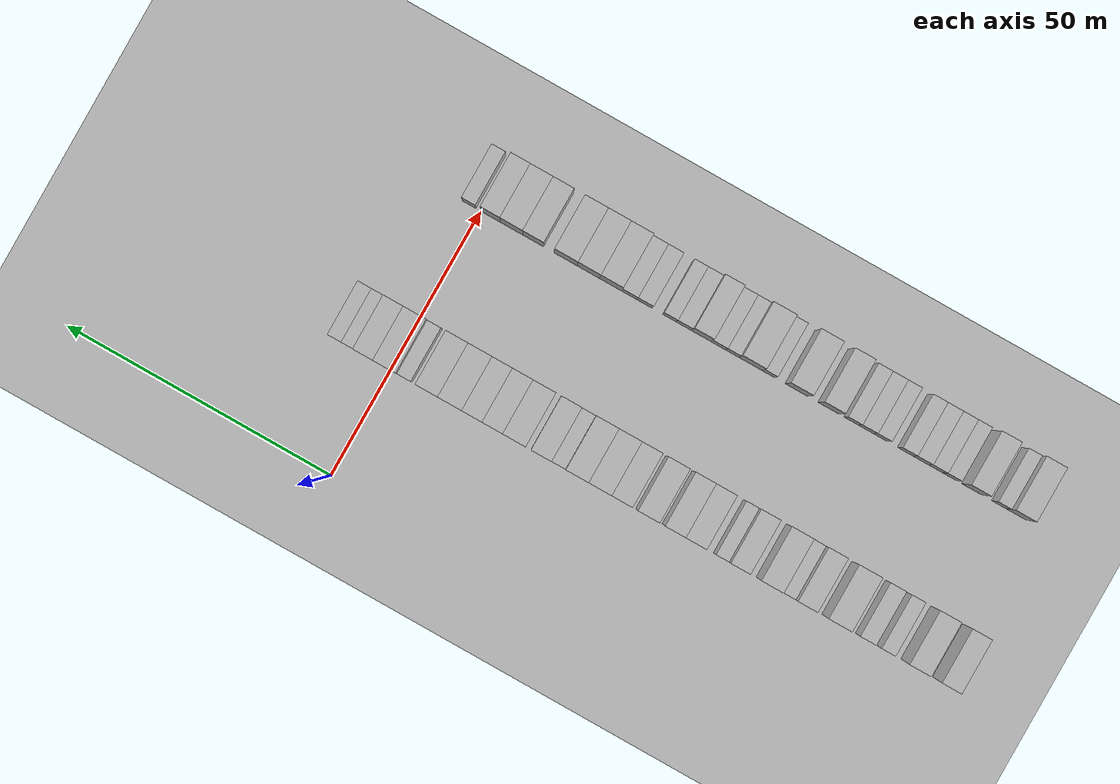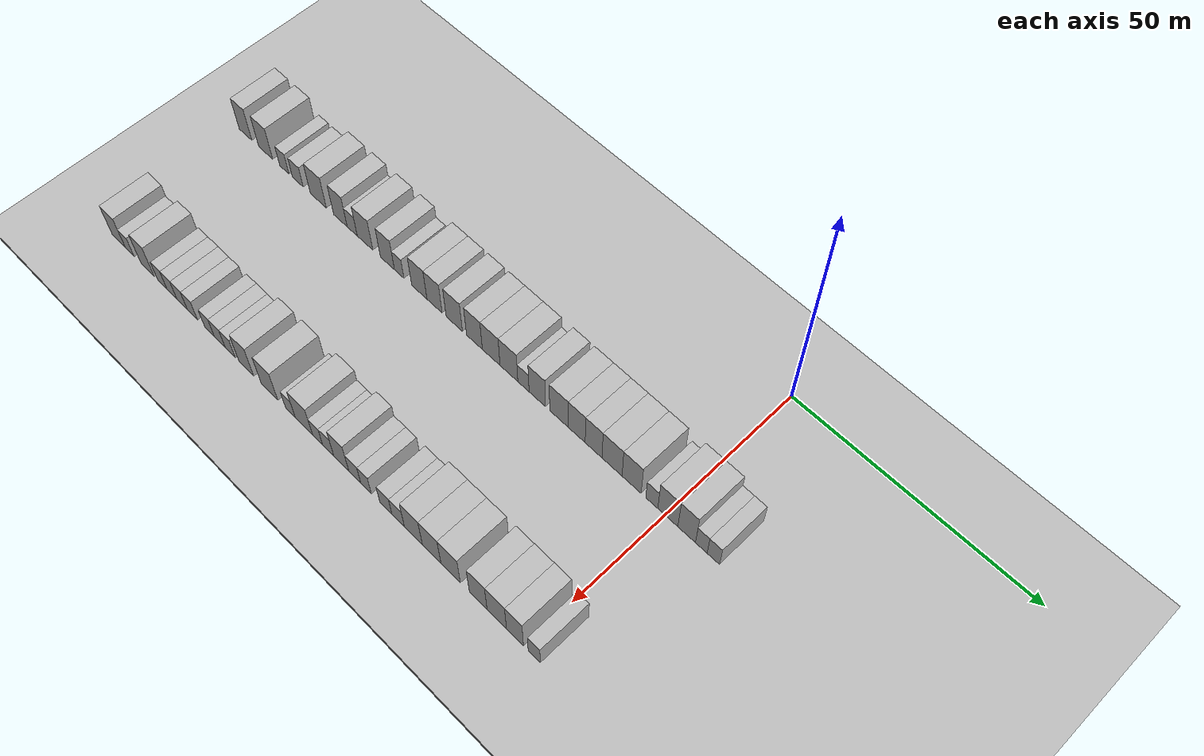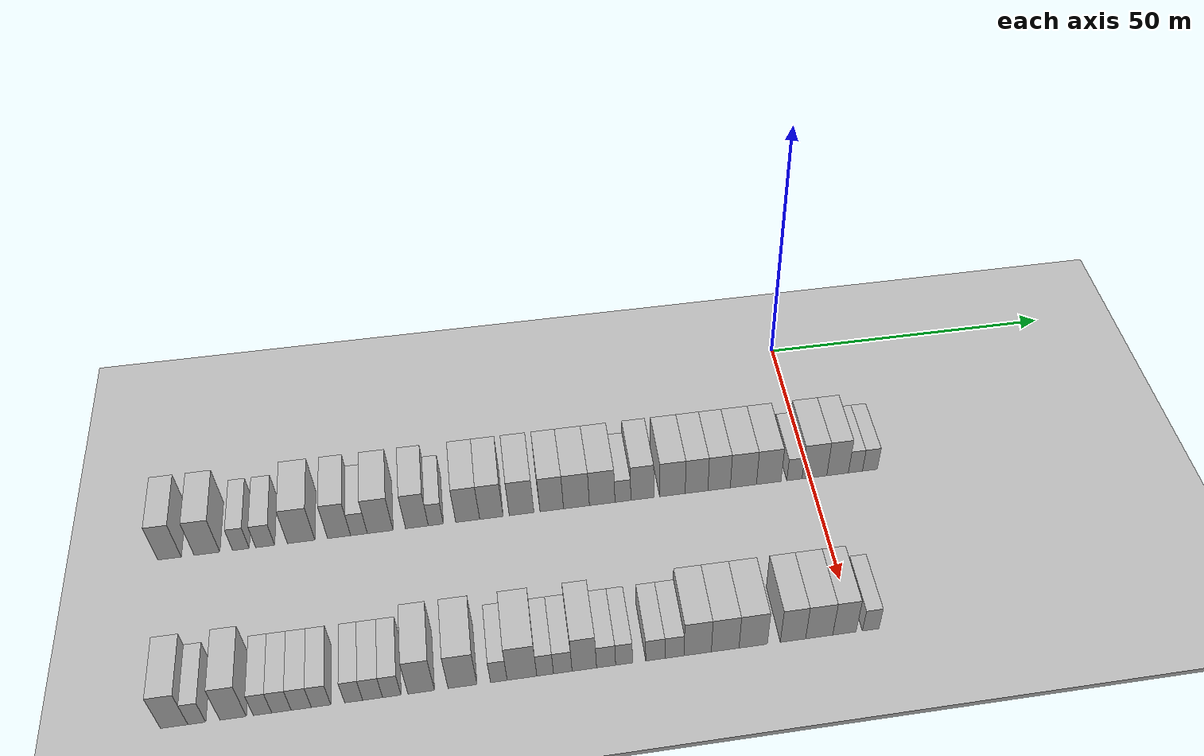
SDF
<sdf version="1.6">
 <world name="default">
  <include><name>ground_plane_1</name><uri>model://HANNAS_ground_plane</uri></include>
  <include>
   <name>ground_plane_2</name>
   <uri>model://HANNAS_ground_plane</uri>
   <pose>100 0 0  0 0 0</pose>
  </include>
  <model name="building_29">
   <static>1</static>
   <pose>25.0000 -104.2438 0 0.000000 0.000000 0.000000</pose>
   <link name="link">
    <pose>0 0 4.50 0 0 0</pose>
    <collision name="collision"><geometry><box><size>10.0000 3.6421 9.0000</size></box></geometry></collision>
    <visual name="visual">
     <cast_shadows>0</cast_shadows>
     <geometry><box><size>10.0000 3.6421 9.0000</size></box></geometry>
     <material>
      <script>
       <uri>model://HANNAS_wall/materials/scripts</uri>
       <uri>model://HANNAS_wall/materials/textures</uri>
       <name>vrc/HANNAS_wall</name>
      </script>
     </material>
    </visual>
   </link>
  </model>
  <model name="building_30">
   <static>1</static>
   <pose>25.0000 -98.4290 0 0.000000 0.000000 0.000000</pose>
   <link name="link">
    <pose>0 0 4.50 0 0 0</pose>
    <collision name="collision"><geometry><box><size>10.0000 3.9873 9.0000</size></box></geometry></collision>
    <visual name="visual">
     <cast_shadows>0</cast_shadows>
     <geometry><box><size>10.0000 3.9873 9.0000</size></box></geometry>
     <material>
      <script>
       <uri>model://HANNAS_wall/materials/scripts</uri>
       <uri>model://HANNAS_wall/materials/textures</uri>
       <name>vrc/HANNAS_wall</name>
      </script>
     </material>
    </visual>
   </link>
  </model>
  <model name="building_31">
   <static>1</static>
   <pose>25.0000 -93.1362 0 0.000000 0.000000 0.000000</pose>
   <link name="link">
    <pose>0 0 3.00 0 0 0</pose>
    <collision name="collision"><geometry><box><size>10.0000 2.5985 6.0000</size></box></geometry></collision>
    <visual name="visual">
     <cast_shadows>0</cast_shadows>
     <geometry><box><size>10.0000 2.5985 6.0000</size></box></geometry>
     <material>
      <script>
       <uri>model://HANNAS_wall/materials/scripts</uri>
       <uri>model://HANNAS_wall/materials/textures</uri>
       <name>vrc/HANNAS_wall</name>
      </script>
     </material>
    </visual>
   </link>
  </model>
  <model name="building_32">
   <static>1</static>
   <pose>25.0000 -89.3451 0 0.000000 0.000000 0.000000</pose>
   <link name="link">
    <pose>0 0 3.00 0 0 0</pose>
    <collision name="collision"><geometry><box><size>10.0000 2.9836 6.0000</size></box></geometry></collision>
    <visual name="visual">
     <cast_shadows>0</cast_shadows>
     <geometry><box><size>10.0000 2.9836 6.0000</size></box></geometry>
     <material>
      <script>
       <uri>model://HANNAS_wall/materials/scripts</uri>
       <uri>model://HANNAS_wall/materials/textures</uri>
       <name>vrc/HANNAS_wall</name>
      </script>
     </material>
    </visual>
   </link>
  </model>
  <model name="building_33">
   <static>1</static>
   <pose>25.0000 -83.6775 0 0.000000 0.000000 0.000000</pose>
   <link name="link">
    <pose>0 0 4.50 0 0 0</pose>
    <collision name="collision"><geometry><box><size>10.0000 4.3515 9.0000</size></box></geometry></collision>
    <visual name="visual">
     <cast_shadows>0</cast_shadows>
     <geometry><box><size>10.0000 4.3515 9.0000</size></box></geometry>
     <material>
      <script>
       <uri>model://HANNAS_wall/materials/scripts</uri>
       <uri>model://HANNAS_wall/materials/textures</uri>
       <name>vrc/HANNAS_wall</name>
      </script>
     </material>
    </visual>
   </link>
  </model>
  <model name="building_34">
   <static>1</static>
   <pose>25.0000 -77.6748 0 0.000000 0.000000 0.000000</pose>
   <link name="link">
    <pose>0 0 4.50 0 0 0</pose>
    <collision name="collision"><geometry><box><size>10.0000 3.6540 9.0000</size></box></geometry></collision>
    <visual name="visual">
     <cast_shadows>0</cast_shadows>
     <geometry><box><size>10.0000 3.6540 9.0000</size></box></geometry>
     <material>
      <script>
       <uri>model://HANNAS_wall/materials/scripts</uri>
       <uri>model://HANNAS_wall/materials/textures</uri>
       <name>vrc/HANNAS_wall</name>
      </script>
     </material>
    </visual>
   </link>
  </model>
  <model name="building_35">
   <static>1</static>
   <pose>25.0000 -74.5172 0 0.000000 0.000000 0.000000</pose>
   <link name="link">
    <pose>0 0 3.00 0 0 0</pose>
    <collision name="collision"><geometry><box><size>10.0000 2.6610 6.0000</size></box></geometry></collision>
    <visual name="visual">
     <cast_shadows>0</cast_shadows>
     <geometry><box><size>10.0000 2.6610 6.0000</size></box></geometry>
     <material>
      <script>
       <uri>model://HANNAS_wall/materials/scripts</uri>
       <uri>model://HANNAS_wall/materials/textures</uri>
       <name>vrc/HANNAS_wall</name>
      </script>
     </material>
    </visual>
   </link>
  </model>
  <model name="building_36">
   <static>1</static>
   <pose>25.0000 -71.1314 0 0.000000 0.000000 0.000000</pose>
   <link name="link">
    <pose>0 0 4.50 0 0 0</pose>
    <collision name="collision"><geometry><box><size>10.0000 4.1106 9.0000</size></box></geometry></collision>
    <visual name="visual">
     <cast_shadows>0</cast_shadows>
     <geometry><box><size>10.0000 4.1106 9.0000</size></box></geometry>
     <material>
      <script>
       <uri>model://HANNAS_wall/materials/scripts</uri>
       <uri>model://HANNAS_wall/materials/textures</uri>
       <name>vrc/HANNAS_wall</name>
      </script>
     </material>
    </visual>
   </link>
  </model>
  <model name="building_37">
   <static>1</static>
   <pose>25.0000 -65.2476 0 0.000000 0.000000 0.000000</pose>
   <link name="link">
    <pose>0 0 4.50 0 0 0</pose>
    <collision name="collision"><geometry><box><size>10.0000 3.6570 9.0000</size></box></geometry></collision>
    <visual name="visual">
     <cast_shadows>0</cast_shadows>
     <geometry><box><size>10.0000 3.6570 9.0000</size></box></geometry>
     <material>
      <script>
       <uri>model://HANNAS_wall/materials/scripts</uri>
       <uri>model://HANNAS_wall/materials/textures</uri>
       <name>vrc/HANNAS_wall</name>
      </script>
     </material>
    </visual>
   </link>
  </model>
  <model name="building_38">
   <static>1</static>
   <pose>25.0000 -62.2054 0 0.000000 0.000000 0.000000</pose>
   <link name="link">
    <pose>0 0 3.00 0 0 0</pose>
    <collision name="collision"><geometry><box><size>10.0000 2.4275 6.0000</size></box></geometry></collision>
    <visual name="visual">
     <cast_shadows>0</cast_shadows>
     <geometry><box><size>10.0000 2.4275 6.0000</size></box></geometry>
     <material>
      <script>
       <uri>model://HANNAS_wall/materials/scripts</uri>
       <uri>model://HANNAS_wall/materials/textures</uri>
       <name>vrc/HANNAS_wall</name>
      </script>
     </material>
    </visual>
   </link>
  </model>
  <model name="building_39">
   <static>1</static>
   <pose>25.0000 -57.0546 0 0.000000 0.000000 0.000000</pose>
   <link name="link">
    <pose>0 0 4.50 0 0 0</pose>
    <collision name="collision"><geometry><box><size>10.0000 3.8741 9.0000</size></box></geometry></collision>
    <visual name="visual">
     <cast_shadows>0</cast_shadows>
     <geometry><box><size>10.0000 3.8741 9.0000</size></box></geometry>
     <material>
      <script>
       <uri>model://HANNAS_wall/materials/scripts</uri>
       <uri>model://HANNAS_wall/materials/textures</uri>
       <name>vrc/HANNAS_wall</name>
      </script>
     </material>
    </visual>
   </link>
  </model>
  <model name="building_40">
   <static>1</static>
   <pose>25.0000 -53.2112 0 0.000000 0.000000 0.000000</pose>
   <link name="link">
    <pose>0 0 4.50 0 0 0</pose>
    <collision name="collision"><geometry><box><size>10.0000 3.8126 9.0000</size></box></geometry></collision>
    <visual name="visual">
     <cast_shadows>0</cast_shadows>
     <geometry><box><size>10.0000 3.8126 9.0000</size></box></geometry>
     <material>
      <script>
       <uri>model://HANNAS_wall/materials/scripts</uri>
       <uri>model://HANNAS_wall/materials/textures</uri>
       <name>vrc/HANNAS_wall</name>
      </script>
     </material>
    </visual>
   </link>
  </model>
  <model name="building_41">
   <static>1</static>
   <pose>25.0000 -48.2939 0 0.000000 0.000000 0.000000</pose>
   <link name="link">
    <pose>0 0 4.50 0 0 0</pose>
    <collision name="collision"><geometry><box><size>10.0000 4.0220 9.0000</size></box></geometry></collision>
    <visual name="visual">
     <cast_shadows>0</cast_shadows>
     <geometry><box><size>10.0000 4.0220 9.0000</size></box></geometry>
     <material>
      <script>
       <uri>model://HANNAS_wall/materials/scripts</uri>
       <uri>model://HANNAS_wall/materials/textures</uri>
       <name>vrc/HANNAS_wall</name>
      </script>
     </material>
    </visual>
   </link>
  </model>
  <model name="building_42">
   <static>1</static>
   <pose>25.0000 -43.3545 0 0.000000 0.000000 0.000000</pose>
   <link name="link">
    <pose>0 0 4.50 0 0 0</pose>
    <collision name="collision"><geometry><box><size>10.0000 3.8568 9.0000</size></box></geometry></collision>
    <visual name="visual">
     <cast_shadows>0</cast_shadows>
     <geometry><box><size>10.0000 3.8568 9.0000</size></box></geometry>
     <material>
      <script>
       <uri>model://HANNAS_wall/materials/scripts</uri>
       <uri>model://HANNAS_wall/materials/textures</uri>
       <name>vrc/HANNAS_wall</name>
      </script>
     </material>
    </visual>
   </link>
  </model>
  <model name="building_43">
   <static>1</static>
   <pose>25.0000 -39.2970 0 0.000000 0.000000 0.000000</pose>
   <link name="link">
    <pose>0 0 4.50 0 0 0</pose>
    <collision name="collision"><geometry><box><size>10.0000 4.2583 9.0000</size></box></geometry></collision>
    <visual name="visual">
     <cast_shadows>0</cast_shadows>
     <geometry><box><size>10.0000 4.2583 9.0000</size></box></geometry>
     <material>
      <script>
       <uri>model://HANNAS_wall/materials/scripts</uri>
       <uri>model://HANNAS_wall/materials/textures</uri>
       <name>vrc/HANNAS_wall</name>
      </script>
     </material>
    </visual>
   </link>
  </model>
  <model name="building_44">
   <static>1</static>
   <pose>25.0000 -35.0530 0 0.000000 0.000000 0.000000</pose>
   <link name="link">
    <pose>0 0 4.50 0 0 0</pose>
    <collision name="collision"><geometry><box><size>10.0000 4.2295 9.0000</size></box></geometry></collision>
    <visual name="visual">
     <cast_shadows>0</cast_shadows>
     <geometry><box><size>10.0000 4.2295 9.0000</size></box></geometry>
     <material>
      <script>
       <uri>model://HANNAS_wall/materials/scripts</uri>
       <uri>model://HANNAS_wall/materials/textures</uri>
       <name>vrc/HANNAS_wall</name>
      </script>
     </material>
    </visual>
   </link>
  </model>
  <model name="building_45">
   <static>1</static>
   <pose>25.0000 -31.6204 0 0.000000 0.000000 0.000000</pose>
   <link name="link">
    <pose>0 0 3.00 0 0 0</pose>
    <collision name="collision"><geometry><box><size>10.0000 2.6357 6.0000</size></box></geometry></collision>
    <visual name="visual">
     <cast_shadows>0</cast_shadows>
     <geometry><box><size>10.0000 2.6357 6.0000</size></box></geometry>
     <material>
      <script>
       <uri>model://HANNAS_wall/materials/scripts</uri>
       <uri>model://HANNAS_wall/materials/textures</uri>
       <name>vrc/HANNAS_wall</name>
      </script>
     </material>
    </visual>
   </link>
  </model>
  <model name="building_46">
   <static>1</static>
   <pose>25.0000 -28.4024 0 0.000000 0.000000 0.000000</pose>
   <link name="link">
    <pose>0 0 4.50 0 0 0</pose>
    <collision name="collision"><geometry><box><size>10.0000 3.8005 9.0000</size></box></geometry></collision>
    <visual name="visual">
     <cast_shadows>0</cast_shadows>
     <geometry><box><size>10.0000 3.8005 9.0000</size></box></geometry>
     <material>
      <script>
       <uri>model://HANNAS_wall/materials/scripts</uri>
       <uri>model://HANNAS_wall/materials/textures</uri>
       <name>vrc/HANNAS_wall</name>
      </script>
     </material>
    </visual>
   </link>
  </model>
  <model name="building_47">
   <static>1</static>
   <pose>25.0000 -23.3721 0 0.000000 0.000000 0.000000</pose>
   <link name="link">
    <pose>0 0 4.50 0 0 0</pose>
    <collision name="collision"><geometry><box><size>10.0000 4.2600 9.0000</size></box></geometry></collision>
    <visual name="visual">
     <cast_shadows>0</cast_shadows>
     <geometry><box><size>10.0000 4.2600 9.0000</size></box></geometry>
     <material>
      <script>
       <uri>model://HANNAS_wall/materials/scripts</uri>
       <uri>model://HANNAS_wall/materials/textures</uri>
       <name>vrc/HANNAS_wall</name>
      </script>
     </material>
    </visual>
   </link>
  </model>
  <model name="building_48">
   <static>1</static>
   <pose>25.0000 -19.3374 0 0.000000 0.000000 0.000000</pose>
   <link name="link">
    <pose>0 0 4.50 0 0 0</pose>
    <collision name="collision"><geometry><box><size>10.0000 3.8095 9.0000</size></box></geometry></collision>
    <visual name="visual">
     <cast_shadows>0</cast_shadows>
     <geometry><box><size>10.0000 3.8095 9.0000</size></box></geometry>
     <material>
      <script>
       <uri>model://HANNAS_wall/materials/scripts</uri>
       <uri>model://HANNAS_wall/materials/textures</uri>
       <name>vrc/HANNAS_wall</name>
      </script>
     </material>
    </visual>
   </link>
  </model>
  <model name="building_49">
   <static>1</static>
   <pose>25.0000 -15.5448 0 0.000000 0.000000 0.000000</pose>
   <link name="link">
    <pose>0 0 4.50 0 0 0</pose>
    <collision name="collision"><geometry><box><size>10.0000 3.7757 9.0000</size></box></geometry></collision>
    <visual name="visual">
     <cast_shadows>0</cast_shadows>
     <geometry><box><size>10.0000 3.7757 9.0000</size></box></geometry>
     <material>
      <script>
       <uri>model://HANNAS_wall/materials/scripts</uri>
       <uri>model://HANNAS_wall/materials/textures</uri>
       <name>vrc/HANNAS_wall</name>
      </script>
     </material>
    </visual>
   </link>
  </model>
  <model name="building_50">
   <static>1</static>
   <pose>25.0000 -11.4437 0 0.000000 0.000000 0.000000</pose>
   <link name="link">
    <pose>0 0 4.50 0 0 0</pose>
    <collision name="collision"><geometry><box><size>10.0000 4.4266 9.0000</size></box></geometry></collision>
    <visual name="visual">
     <cast_shadows>0</cast_shadows>
     <geometry><box><size>10.0000 4.4266 9.0000</size></box></geometry>
     <material>
      <script>
       <uri>model://HANNAS_wall/materials/scripts</uri>
       <uri>model://HANNAS_wall/materials/textures</uri>
       <name>vrc/HANNAS_wall</name>
      </script>
     </material>
    </visual>
   </link>
  </model>
  <model name="building_51">
   <static>1</static>
   <pose>25.0000 -7.1522 0 0.000000 0.000000 0.000000</pose>
   <link name="link">
    <pose>0 0 4.50 0 0 0</pose>
    <collision name="collision"><geometry><box><size>10.0000 4.1563 9.0000</size></box></geometry></collision>
    <visual name="visual">
     <cast_shadows>0</cast_shadows>
     <geometry><box><size>10.0000 4.1563 9.0000</size></box></geometry>
     <material>
      <script>
       <uri>model://HANNAS_wall/materials/scripts</uri>
       <uri>model://HANNAS_wall/materials/textures</uri>
       <name>vrc/HANNAS_wall</name>
      </script>
     </material>
    </visual>
   </link>
  </model>
  <model name="building_52">
   <static>1</static>
   <pose>25.0000 -2.7826 0 0.000000 0.000000 0.000000</pose>
   <link name="link">
    <pose>0 0 3.00 0 0 0</pose>
    <collision name="collision"><geometry><box><size>10.0000 2.5829 6.0000</size></box></geometry></collision>
    <visual name="visual">
     <cast_shadows>0</cast_shadows>
     <geometry><box><size>10.0000 2.5829 6.0000</size></box></geometry>
     <material>
      <script>
       <uri>model://HANNAS_wall/materials/scripts</uri>
       <uri>model://HANNAS_wall/materials/textures</uri>
       <name>vrc/HANNAS_wall</name>
      </script>
     </material>
    </visual>
   </link>
  </model>
  <model name="building_53">
   <static>1</static>
   <pose>25.0000 0.6351 0 0.000000 0.000000 0.000000</pose>
   <link name="link">
    <pose>0 0 4.50 0 0 0</pose>
    <collision name="collision"><geometry><box><size>10.0000 4.2525 9.0000</size></box></geometry></collision>
    <visual name="visual">
     <cast_shadows>0</cast_shadows>
     <geometry><box><size>10.0000 4.2525 9.0000</size></box></geometry>
     <material>
      <script>
       <uri>model://HANNAS_wall/materials/scripts</uri>
       <uri>model://HANNAS_wall/materials/textures</uri>
       <name>vrc/HANNAS_wall</name>
      </script>
     </material>
    </visual>
   </link>
  </model>
  <model name="building_54">
   <static>1</static>
   <pose>25.0000 4.6112 0 0.000000 0.000000 0.000000</pose>
   <link name="link">
    <pose>0 0 4.50 0 0 0</pose>
    <collision name="collision"><geometry><box><size>10.0000 3.6997 9.0000</size></box></geometry></collision>
    <visual name="visual">
     <cast_shadows>0</cast_shadows>
     <geometry><box><size>10.0000 3.6997 9.0000</size></box></geometry>
     <material>
      <script>
       <uri>model://HANNAS_wall/materials/scripts</uri>
       <uri>model://HANNAS_wall/materials/textures</uri>
       <name>vrc/HANNAS_wall</name>
      </script>
     </material>
    </visual>
   </link>
  </model>
  <model name="building_55">
   <static>1</static>
   <pose>25.0000 7.6699 0 0.000000 0.000000 0.000000</pose>
   <link name="link">
    <pose>0 0 3.00 0 0 0</pose>
    <collision name="collision"><geometry><box><size>10.0000 2.4176 6.0000</size></box></geometry></collision>
    <visual name="visual">
     <cast_shadows>0</cast_shadows>
     <geometry><box><size>10.0000 2.4176 6.0000</size></box></geometry>
     <material>
      <script>
       <uri>model://HANNAS_wall/materials/scripts</uri>
       <uri>model://HANNAS_wall/materials/textures</uri>
       <name>vrc/HANNAS_wall</name>
      </script>
     </material>
    </visual>
   </link>
  </model>
  <model name="building_56">
   <static>1</static>
   <pose>25.0000 10.1637 0 0.000000 0.000000 0.000000</pose>
   <link name="link">
    <pose>0 0 3.00 0 0 0</pose>
    <collision name="collision"><geometry><box><size>10.0000 2.5700 6.0000</size></box></geometry></collision>
    <visual name="visual">
     <cast_shadows>0</cast_shadows>
     <geometry><box><size>10.0000 2.5700 6.0000</size></box></geometry>
     <material>
      <script>
       <uri>model://HANNAS_wall/materials/scripts</uri>
       <uri>model://HANNAS_wall/materials/textures</uri>
       <name>vrc/HANNAS_wall</name>
      </script>
     </material>
    </visual>
   </link>
  </model>
  <model name="building_141">
   <static>1</static>
   <pose>55.0000 -101.0415 0 0.000000 0.000000 0.000000</pose>
   <link name="link">
    <pose>0 0 4.50 0 0 0</pose>
    <collision name="collision"><geometry><box><size>10.0000 3.8505 9.0000</size></box></geometry></collision>
    <visual name="visual">
     <cast_shadows>0</cast_shadows>
     <geometry><box><size>10.0000 3.8505 9.0000</size></box></geometry>
     <material>
      <script>
       <uri>model://HANNAS_wall/materials/scripts</uri>
       <uri>model://HANNAS_wall/materials/textures</uri>
       <name>vrc/HANNAS_wall</name>
      </script>
     </material>
    </visual>
   </link>
  </model>
  <model name="building_142">
   <static>1</static>
   <pose>55.0000 -97.8619 0 0.000000 0.000000 0.000000</pose>
   <link name="link">
    <pose>0 0 3.00 0 0 0</pose>
    <collision name="collision"><geometry><box><size>10.0000 2.5088 6.0000</size></box></geometry></collision>
    <visual name="visual">
     <cast_shadows>0</cast_shadows>
     <geometry><box><size>10.0000 2.5088 6.0000</size></box></geometry>
     <material>
      <script>
       <uri>model://HANNAS_wall/materials/scripts</uri>
       <uri>model://HANNAS_wall/materials/textures</uri>
       <name>vrc/HANNAS_wall</name>
      </script>
     </material>
    </visual>
   </link>
  </model>
  <model name="building_143">
   <static>1</static>
   <pose>55.0000 -92.7364 0 0.000000 0.000000 0.000000</pose>
   <link name="link">
    <pose>0 0 4.50 0 0 0</pose>
    <collision name="collision"><geometry><box><size>10.0000 3.7421 9.0000</size></box></geometry></collision>
    <visual name="visual">
     <cast_shadows>0</cast_shadows>
     <geometry><box><size>10.0000 3.7421 9.0000</size></box></geometry>
     <material>
      <script>
       <uri>model://HANNAS_wall/materials/scripts</uri>
       <uri>model://HANNAS_wall/materials/textures</uri>
       <name>vrc/HANNAS_wall</name>
      </script>
     </material>
    </visual>
   </link>
  </model>
  <model name="building_144">
   <static>1</static>
   <pose>55.0000 -88.5552 0 0.000000 0.000000 0.000000</pose>
   <link name="link">
    <pose>0 0 3.00 0 0 0</pose>
    <collision name="collision"><geometry><box><size>10.0000 2.6205 6.0000</size></box></geometry></collision>
    <visual name="visual">
     <cast_shadows>0</cast_shadows>
     <geometry><box><size>10.0000 2.6205 6.0000</size></box></geometry>
     <material>
      <script>
       <uri>model://HANNAS_wall/materials/scripts</uri>
       <uri>model://HANNAS_wall/materials/textures</uri>
       <name>vrc/HANNAS_wall</name>
      </script>
     </material>
    </visual>
   </link>
  </model>
  <model name="building_145">
   <static>1</static>
   <pose>55.0000 -85.8587 0 0.000000 0.000000 0.000000</pose>
   <link name="link">
    <pose>0 0 3.00 0 0 0</pose>
    <collision name="collision"><geometry><box><size>10.0000 2.7725 6.0000</size></box></geometry></collision>
    <visual name="visual">
     <cast_shadows>0</cast_shadows>
     <geometry><box><size>10.0000 2.7725 6.0000</size></box></geometry>
     <material>
      <script>
       <uri>model://HANNAS_wall/materials/scripts</uri>
       <uri>model://HANNAS_wall/materials/textures</uri>
       <name>vrc/HANNAS_wall</name>
      </script>
     </material>
    </visual>
   </link>
  </model>
  <model name="building_146">
   <static>1</static>
   <pose>55.0000 -83.0288 0 0.000000 0.000000 0.000000</pose>
   <link name="link">
    <pose>0 0 3.00 0 0 0</pose>
    <collision name="collision"><geometry><box><size>10.0000 2.8874 6.0000</size></box></geometry></collision>
    <visual name="visual">
     <cast_shadows>0</cast_shadows>
     <geometry><box><size>10.0000 2.8874 6.0000</size></box></geometry>
     <material>
      <script>
       <uri>model://HANNAS_wall/materials/scripts</uri>
       <uri>model://HANNAS_wall/materials/textures</uri>
       <name>vrc/HANNAS_wall</name>
      </script>
     </material>
    </visual>
   </link>
  </model>
  <model name="building_147">
   <static>1</static>
   <pose>55.0000 -80.1967 0 0.000000 0.000000 0.000000</pose>
   <link name="link">
    <pose>0 0 3.00 0 0 0</pose>
    <collision name="collision"><geometry><box><size>10.0000 2.7767 6.0000</size></box></geometry></collision>
    <visual name="visual">
     <cast_shadows>0</cast_shadows>
     <geometry><box><size>10.0000 2.7767 6.0000</size></box></geometry>
     <material>
      <script>
       <uri>model://HANNAS_wall/materials/scripts</uri>
       <uri>model://HANNAS_wall/materials/textures</uri>
       <name>vrc/HANNAS_wall</name>
      </script>
     </material>
    </visual>
   </link>
  </model>
  <model name="building_148">
   <static>1</static>
   <pose>55.0000 -75.4994 0 0.000000 0.000000 0.000000</pose>
   <link name="link">
    <pose>0 0 3.00 0 0 0</pose>
    <collision name="collision"><geometry><box><size>10.0000 2.6178 6.0000</size></box></geometry></collision>
    <visual name="visual">
     <cast_shadows>0</cast_shadows>
     <geometry><box><size>10.0000 2.6178 6.0000</size></box></geometry>
     <material>
      <script>
       <uri>model://HANNAS_wall/materials/scripts</uri>
       <uri>model://HANNAS_wall/materials/textures</uri>
       <name>vrc/HANNAS_wall</name>
      </script>
     </material>
    </visual>
   </link>
  </model>
  <model name="building_149">
   <static>1</static>
   <pose>55.0000 -72.7588 0 0.000000 0.000000 0.000000</pose>
   <link name="link">
    <pose>0 0 3.00 0 0 0</pose>
    <collision name="collision"><geometry><box><size>10.0000 2.8634 6.0000</size></box></geometry></collision>
    <visual name="visual">
     <cast_shadows>0</cast_shadows>
     <geometry><box><size>10.0000 2.8634 6.0000</size></box></geometry>
     <material>
      <script>
       <uri>model://HANNAS_wall/materials/scripts</uri>
       <uri>model://HANNAS_wall/materials/textures</uri>
       <name>vrc/HANNAS_wall</name>
      </script>
     </material>
    </visual>
   </link>
  </model>
  <model name="building_150">
   <static>1</static>
   <pose>55.0000 -69.9872 0 0.000000 0.000000 0.000000</pose>
   <link name="link">
    <pose>0 0 3.00 0 0 0</pose>
    <collision name="collision"><geometry><box><size>10.0000 2.6799 6.0000</size></box></geometry></collision>
    <visual name="visual">
     <cast_shadows>0</cast_shadows>
     <geometry><box><size>10.0000 2.6799 6.0000</size></box></geometry>
     <material>
      <script>
       <uri>model://HANNAS_wall/materials/scripts</uri>
       <uri>model://HANNAS_wall/materials/textures</uri>
       <name>vrc/HANNAS_wall</name>
      </script>
     </material>
    </visual>
   </link>
  </model>
  <model name="building_151">
   <static>1</static>
   <pose>55.0000 -65.7146 0 0.000000 0.000000 0.000000</pose>
   <link name="link">
    <pose>0 0 4.50 0 0 0</pose>
    <collision name="collision"><geometry><box><size>10.0000 3.8652 9.0000</size></box></geometry></collision>
    <visual name="visual">
     <cast_shadows>0</cast_shadows>
     <geometry><box><size>10.0000 3.8652 9.0000</size></box></geometry>
     <material>
      <script>
       <uri>model://HANNAS_wall/materials/scripts</uri>
       <uri>model://HANNAS_wall/materials/textures</uri>
       <name>vrc/HANNAS_wall</name>
      </script>
     </material>
    </visual>
   </link>
  </model>
  <model name="building_152">
   <static>1</static>
   <pose>55.0000 -59.6618 0 0.000000 0.000000 0.000000</pose>
   <link name="link">
    <pose>0 0 4.50 0 0 0</pose>
    <collision name="collision"><geometry><box><size>10.0000 4.2404 9.0000</size></box></geometry></collision>
    <visual name="visual">
     <cast_shadows>0</cast_shadows>
     <geometry><box><size>10.0000 4.2404 9.0000</size></box></geometry>
     <material>
      <script>
       <uri>model://HANNAS_wall/materials/scripts</uri>
       <uri>model://HANNAS_wall/materials/textures</uri>
       <name>vrc/HANNAS_wall</name>
      </script>
     </material>
    </visual>
   </link>
  </model>
  <model name="building_153">
   <static>1</static>
   <pose>55.0000 -54.3195 0 0.000000 0.000000 0.000000</pose>
   <link name="link">
    <pose>0 0 3.00 0 0 0</pose>
    <collision name="collision"><geometry><box><size>10.0000 2.4441 6.0000</size></box></geometry></collision>
    <visual name="visual">
     <cast_shadows>0</cast_shadows>
     <geometry><box><size>10.0000 2.4441 6.0000</size></box></geometry>
     <material>
      <script>
       <uri>model://HANNAS_wall/materials/scripts</uri>
       <uri>model://HANNAS_wall/materials/textures</uri>
       <name>vrc/HANNAS_wall</name>
      </script>
     </material>
    </visual>
   </link>
  </model>
  <model name="building_154">
   <static>1</static>
   <pose>55.0000 -50.9003 0 0.000000 0.000000 0.000000</pose>
   <link name="link">
    <pose>0 0 4.50 0 0 0</pose>
    <collision name="collision"><geometry><box><size>10.0000 4.3943 9.0000</size></box></geometry></collision>
    <visual name="visual">
     <cast_shadows>0</cast_shadows>
     <geometry><box><size>10.0000 4.3943 9.0000</size></box></geometry>
     <material>
      <script>
       <uri>model://HANNAS_wall/materials/scripts</uri>
       <uri>model://HANNAS_wall/materials/textures</uri>
       <name>vrc/HANNAS_wall</name>
      </script>
     </material>
    </visual>
   </link>
  </model>
  <model name="building_155">
   <static>1</static>
   <pose>55.0000 -47.4628 0 0.000000 0.000000 0.000000</pose>
   <link name="link">
    <pose>0 0 3.00 0 0 0</pose>
    <collision name="collision"><geometry><box><size>10.0000 2.4807 6.0000</size></box></geometry></collision>
    <visual name="visual">
     <cast_shadows>0</cast_shadows>
     <geometry><box><size>10.0000 2.4807 6.0000</size></box></geometry>
     <material>
      <script>
       <uri>model://HANNAS_wall/materials/scripts</uri>
       <uri>model://HANNAS_wall/materials/textures</uri>
       <name>vrc/HANNAS_wall</name>
      </script>
     </material>
    </visual>
   </link>
  </model>
  <model name="building_156">
   <static>1</static>
   <pose>55.0000 -44.8412 0 0.000000 0.000000 0.000000</pose>
   <link name="link">
    <pose>0 0 3.00 0 0 0</pose>
    <collision name="collision"><geometry><box><size>10.0000 2.7625 6.0000</size></box></geometry></collision>
    <visual name="visual">
     <cast_shadows>0</cast_shadows>
     <geometry><box><size>10.0000 2.7625 6.0000</size></box></geometry>
     <material>
      <script>
       <uri>model://HANNAS_wall/materials/scripts</uri>
       <uri>model://HANNAS_wall/materials/textures</uri>
       <name>vrc/HANNAS_wall</name>
      </script>
     </material>
    </visual>
   </link>
  </model>
  <model name="building_157">
   <static>1</static>
   <pose>55.0000 -41.6310 0 0.000000 0.000000 0.000000</pose>
   <link name="link">
    <pose>0 0 4.50 0 0 0</pose>
    <collision name="collision"><geometry><box><size>10.0000 3.6579 9.0000</size></box></geometry></collision>
    <visual name="visual">
     <cast_shadows>0</cast_shadows>
     <geometry><box><size>10.0000 3.6579 9.0000</size></box></geometry>
     <material>
      <script>
       <uri>model://HANNAS_wall/materials/scripts</uri>
       <uri>model://HANNAS_wall/materials/textures</uri>
       <name>vrc/HANNAS_wall</name>
      </script>
     </material>
    </visual>
   </link>
  </model>
  <model name="building_158">
   <static>1</static>
   <pose>55.0000 -38.3703 0 0.000000 0.000000 0.000000</pose>
   <link name="link">
    <pose>0 0 3.00 0 0 0</pose>
    <collision name="collision"><geometry><box><size>10.0000 2.8633 6.0000</size></box></geometry></collision>
    <visual name="visual">
     <cast_shadows>0</cast_shadows>
     <geometry><box><size>10.0000 2.8633 6.0000</size></box></geometry>
     <material>
      <script>
       <uri>model://HANNAS_wall/materials/scripts</uri>
       <uri>model://HANNAS_wall/materials/textures</uri>
       <name>vrc/HANNAS_wall</name>
      </script>
     </material>
    </visual>
   </link>
  </model>
  <model name="building_159">
   <static>1</static>
   <pose>55.0000 -35.6683 0 0.000000 0.000000 0.000000</pose>
   <link name="link">
    <pose>0 0 3.00 0 0 0</pose>
    <collision name="collision"><geometry><box><size>10.0000 2.5407 6.0000</size></box></geometry></collision>
    <visual name="visual">
     <cast_shadows>0</cast_shadows>
     <geometry><box><size>10.0000 2.5407 6.0000</size></box></geometry>
     <material>
      <script>
       <uri>model://HANNAS_wall/materials/scripts</uri>
       <uri>model://HANNAS_wall/materials/textures</uri>
       <name>vrc/HANNAS_wall</name>
      </script>
     </material>
    </visual>
   </link>
  </model>
  <model name="building_160">
   <static>1</static>
   <pose>55.0000 -30.9582 0 0.000000 0.000000 0.000000</pose>
   <link name="link">
    <pose>0 0 3.00 0 0 0</pose>
    <collision name="collision"><geometry><box><size>10.0000 2.8795 6.0000</size></box></geometry></collision>
    <visual name="visual">
     <cast_shadows>0</cast_shadows>
     <geometry><box><size>10.0000 2.8795 6.0000</size></box></geometry>
     <material>
      <script>
       <uri>model://HANNAS_wall/materials/scripts</uri>
       <uri>model://HANNAS_wall/materials/textures</uri>
       <name>vrc/HANNAS_wall</name>
      </script>
     </material>
    </visual>
   </link>
  </model>
  <model name="building_161">
   <static>1</static>
   <pose>55.0000 -28.0639 0 0.000000 0.000000 0.000000</pose>
   <link name="link">
    <pose>0 0 3.00 0 0 0</pose>
    <collision name="collision"><geometry><box><size>10.0000 2.9092 6.0000</size></box></geometry></collision>
    <visual name="visual">
     <cast_shadows>0</cast_shadows>
     <geometry><box><size>10.0000 2.9092 6.0000</size></box></geometry>
     <material>
      <script>
       <uri>model://HANNAS_wall/materials/scripts</uri>
       <uri>model://HANNAS_wall/materials/textures</uri>
       <name>vrc/HANNAS_wall</name>
      </script>
     </material>
    </visual>
   </link>
  </model>
  <model name="building_162">
   <static>1</static>
   <pose>55.0000 -24.5283 0 0.000000 0.000000 0.000000</pose>
   <link name="link">
    <pose>0 0 4.50 0 0 0</pose>
    <collision name="collision"><geometry><box><size>10.0000 4.1621 9.0000</size></box></geometry></collision>
    <visual name="visual">
     <cast_shadows>0</cast_shadows>
     <geometry><box><size>10.0000 4.1621 9.0000</size></box></geometry>
     <material>
      <script>
       <uri>model://HANNAS_wall/materials/scripts</uri>
       <uri>model://HANNAS_wall/materials/textures</uri>
       <name>vrc/HANNAS_wall</name>
      </script>
     </material>
    </visual>
   </link>
  </model>
  <model name="building_163">
   <static>1</static>
   <pose>55.0000 -20.3330 0 0.000000 0.000000 0.000000</pose>
   <link name="link">
    <pose>0 0 4.50 0 0 0</pose>
    <collision name="collision"><geometry><box><size>10.0000 4.2285 9.0000</size></box></geometry></collision>
    <visual name="visual">
     <cast_shadows>0</cast_shadows>
     <geometry><box><size>10.0000 4.2285 9.0000</size></box></geometry>
     <material>
      <script>
       <uri>model://HANNAS_wall/materials/scripts</uri>
       <uri>model://HANNAS_wall/materials/textures</uri>
       <name>vrc/HANNAS_wall</name>
      </script>
     </material>
    </visual>
   </link>
  </model>
  <model name="building_164">
   <static>1</static>
   <pose>55.0000 -16.0436 0 0.000000 0.000000 0.000000</pose>
   <link name="link">
    <pose>0 0 4.50 0 0 0</pose>
    <collision name="collision"><geometry><box><size>10.0000 4.3501 9.0000</size></box></geometry></collision>
    <visual name="visual">
     <cast_shadows>0</cast_shadows>
     <geometry><box><size>10.0000 4.3501 9.0000</size></box></geometry>
     <material>
      <script>
       <uri>model://HANNAS_wall/materials/scripts</uri>
       <uri>model://HANNAS_wall/materials/textures</uri>
       <name>vrc/HANNAS_wall</name>
      </script>
     </material>
    </visual>
   </link>
  </model>
  <model name="building_165">
   <static>1</static>
   <pose>55.0000 -9.9140 0 0.000000 0.000000 0.000000</pose>
   <link name="link">
    <pose>0 0 4.50 0 0 0</pose>
    <collision name="collision"><geometry><box><size>10.0000 3.9090 9.0000</size></box></geometry></collision>
    <visual name="visual">
     <cast_shadows>0</cast_shadows>
     <geometry><box><size>10.0000 3.9090 9.0000</size></box></geometry>
     <material>
      <script>
       <uri>model://HANNAS_wall/materials/scripts</uri>
       <uri>model://HANNAS_wall/materials/textures</uri>
       <name>vrc/HANNAS_wall</name>
      </script>
     </material>
    </visual>
   </link>
  </model>
  <model name="building_166">
   <static>1</static>
   <pose>55.0000 -5.8526 0 0.000000 0.000000 0.000000</pose>
   <link name="link">
    <pose>0 0 4.50 0 0 0</pose>
    <collision name="collision"><geometry><box><size>10.0000 4.2138 9.0000</size></box></geometry></collision>
    <visual name="visual">
     <cast_shadows>0</cast_shadows>
     <geometry><box><size>10.0000 4.2138 9.0000</size></box></geometry>
     <material>
      <script>
       <uri>model://HANNAS_wall/materials/scripts</uri>
       <uri>model://HANNAS_wall/materials/textures</uri>
       <name>vrc/HANNAS_wall</name>
      </script>
     </material>
    </visual>
   </link>
  </model>
  <model name="building_167">
   <static>1</static>
   <pose>55.0000 -1.9284 0 0.000000 0.000000 0.000000</pose>
   <link name="link">
    <pose>0 0 4.50 0 0 0</pose>
    <collision name="collision"><geometry><box><size>10.0000 3.6345 9.0000</size></box></geometry></collision>
    <visual name="visual">
     <cast_shadows>0</cast_shadows>
     <geometry><box><size>10.0000 3.6345 9.0000</size></box></geometry>
     <material>
      <script>
       <uri>model://HANNAS_wall/materials/scripts</uri>
       <uri>model://HANNAS_wall/materials/textures</uri>
       <name>vrc/HANNAS_wall</name>
      </script>
     </material>
    </visual>
   </link>
  </model>
  <model name="building_168">
   <static>1</static>
   <pose>55.0000 2.1800 0 0.000000 0.000000 0.000000</pose>
   <link name="link">
    <pose>0 0 3.00 0 0 0</pose>
    <collision name="collision"><geometry><box><size>10.0000 2.5824 6.0000</size></box></geometry></collision>
    <visual name="visual">
     <cast_shadows>0</cast_shadows>
     <geometry><box><size>10.0000 2.5824 6.0000</size></box></geometry>
     <material>
      <script>
       <uri>model://HANNAS_wall/materials/scripts</uri>
       <uri>model://HANNAS_wall/materials/textures</uri>
       <name>vrc/HANNAS_wall</name>
      </script>
     </material>
    </visual>
   </link>
  </model>
 </world>
</sdf>
